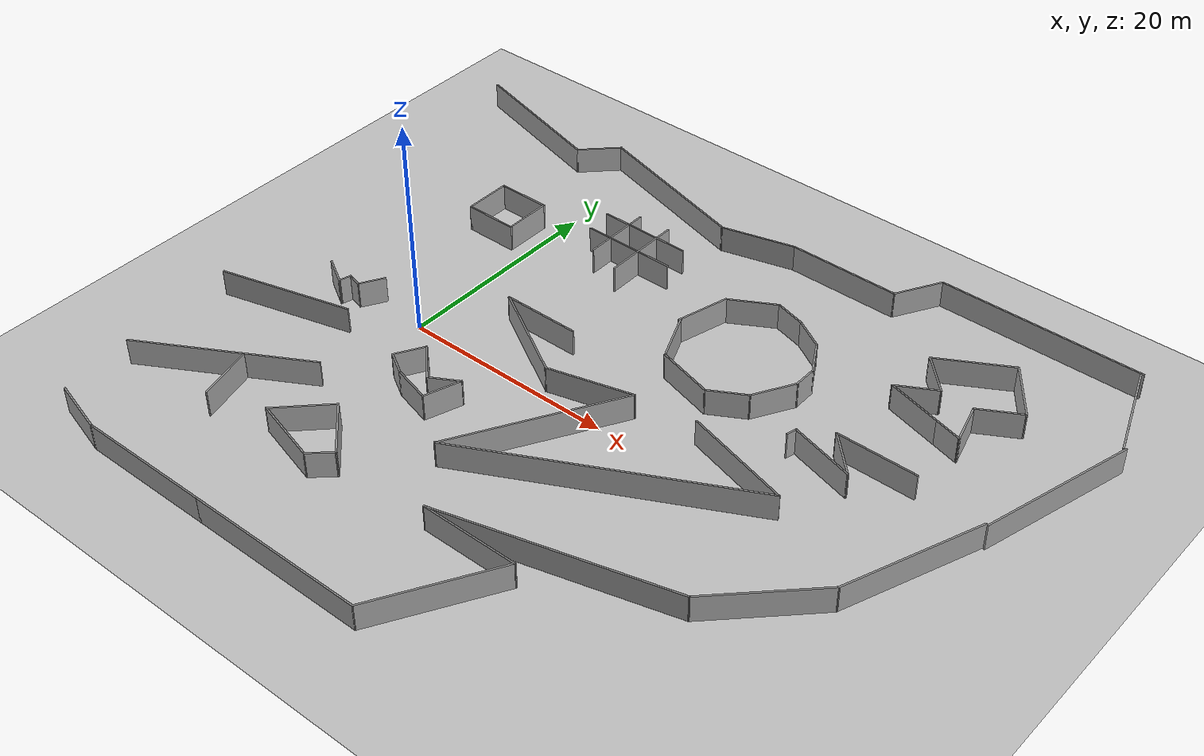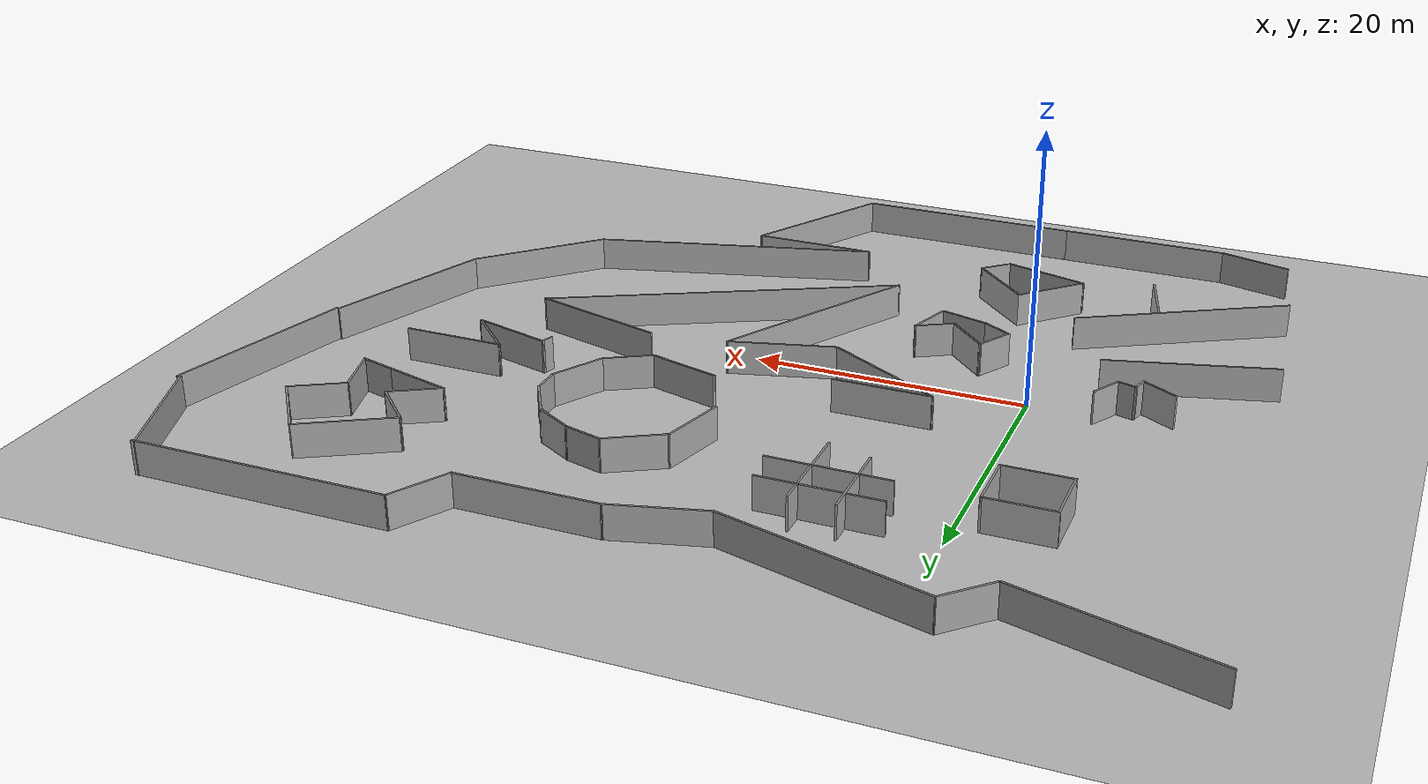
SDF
<sdf version="1.7">
 <world name="default">
  <model name="ground_plane">
   <static>1</static>
   <link name="link">
    <collision name="collision">
     <geometry><plane><normal>0 0 1</normal><size>100 100</size></plane></geometry>
     <surface><friction><ode><mu>100</mu><mu2>50</mu2></ode></friction></surface>
    </collision>
    <visual name="visual">
     <cast_shadows>0</cast_shadows>
     <geometry><plane><normal>0 0 1</normal><size>100 100</size></plane></geometry>
     <material>
      <script><uri>file://media/materials/scripts/gazebo.material</uri><name>Gazebo/Grey</name></script>
     </material>
    </visual>
   </link>
  </model>
  <model name="custommap5">
   <pose>6.86711 -0.856109 0 0 -0 0</pose>
   <link name="Wall_118">
    <collision name="Wall_118_Collision">
     <geometry><box><size>3 0.15 2.5</size></box></geometry>
     <pose>0 0 1.25 0 -0 0</pose>
    </collision>
    <visual name="Wall_118_Visual">
     <pose>0 0 1.25 0 -0 0</pose>
     <geometry><box><size>3 0.15 2.5</size></box></geometry>
     <material>
      <script><uri>file://media/materials/scripts/gazebo.material</uri><name>Gazebo/Grey</name></script>
      <ambient>1 1 1 1</ambient>
     </material>
     <meta><layer>0</layer></meta>
    </visual>
    <pose>1.5599 -4.60224 0 0 -0 -2.61799</pose>
   </link>
   <link name="Wall_119">
    <collision name="Wall_119_Collision">
     <geometry><box><size>4 0.15 2.5</size></box></geometry>
     <pose>0 0 1.25 0 -0 0</pose>
    </collision>
    <visual name="Wall_119_Visual">
     <pose>0 0 1.25 0 -0 0</pose>
     <geometry><box><size>4 0.15 2.5</size></box></geometry>
     <material>
      <script><uri>file://media/materials/scripts/gazebo.material</uri><name>Gazebo/Grey</name></script>
      <ambient>1 1 1 1</ambient>
     </material>
     <meta><layer>0</layer></meta>
    </visual>
    <pose>-1.03537 -3.95356 0 0 -0 2.35619</pose>
   </link>
   <link name="Wall_120">
    <collision name="Wall_120_Collision">
     <geometry><box><size>3 0.15 2.5</size></box></geometry>
     <pose>0 0 1.25 0 -0 0</pose>
    </collision>
    <visual name="Wall_120_Visual">
     <pose>0 0 1.25 0 -0 0</pose>
     <geometry><box><size>3 0.15 2.5</size></box></geometry>
     <material>
      <script><uri>file://media/materials/scripts/gazebo.material</uri><name>Gazebo/Grey</name></script>
      <ambient>1 1 1 1</ambient>
     </material>
     <meta><layer>0</layer></meta>
    </visual>
    <pose>-3.10905 -3.82647 0 0 -0 -2.0944</pose>
   </link>
   <link name="Wall_121">
    <collision name="Wall_121_Collision">
     <geometry><box><size>2.5 0.15 2.5</size></box></geometry>
     <pose>0 0 1.25 0 -0 0</pose>
    </collision>
    <visual name="Wall_121_Visual">
     <pose>0 0 1.25 0 -0 0</pose>
     <geometry><box><size>2.5 0.15 2.5</size></box></geometry>
     <material>
      <script><uri>file://media/materials/scripts/gazebo.material</uri><name>Gazebo/Grey</name></script>
      <ambient>1 1 1 1</ambient>
     </material>
     <meta><layer>0</layer></meta>
    </visual>
    <pose>-2.80397 -5.64805 0 0 -0 -0.523599</pose>
   </link>
   <link name="Wall_122">
    <collision name="Wall_122_Collision">
     <geometry><box><size>3.75 0.15 2.5</size></box></geometry>
     <pose>0 0 1.25 0 -0 0</pose>
    </collision>
    <visual name="Wall_122_Visual">
     <pose>0 0 1.25 0 -0 0</pose>
     <geometry><box><size>3.75 0.15 2.5</size></box></geometry>
     <material>
      <script><uri>file://media/materials/scripts/gazebo.material</uri><name>Gazebo/Grey</name></script>
      <ambient>1 1 1 1</ambient>
     </material>
     <meta><layer>0</layer></meta>
    </visual>
    <pose>-0.047719 -6.70143 0 0 -0 -0.261799</pose>
   </link>
   <link name="Wall_123">
    <collision name="Wall_123_Collision">
     <geometry><box><size>3.60819 0.15 2.5</size></box></geometry>
     <pose>0 0 1.25 0 -0 0</pose>
    </collision>
    <visual name="Wall_123_Visual">
     <pose>0 0 1.25 0 -0 0</pose>
     <geometry><box><size>3.60819 0.15 2.5</size></box></geometry>
     <material>
      <script><uri>file://media/materials/scripts/gazebo.material</uri><name>Gazebo/Grey</name></script>
      <ambient>1 1 1 1</ambient>
     </material>
     <meta><layer>0</layer></meta>
    </visual>
    <pose>2.24247 -5.52852 0 0 -0 1.24616</pose>
   </link>
   <link name="Wall_125">
    <collision name="Wall_125_Collision">
     <geometry><box><size>7.25 0.15 2.5</size></box></geometry>
     <pose>0 0 1.25 0 -0 0</pose>
    </collision>
    <visual name="Wall_125_Visual">
     <pose>0 0 1.25 0 -0 0</pose>
     <geometry><box><size>7.25 0.15 2.5</size></box></geometry>
     <material>
      <script><uri>file://media/materials/scripts/gazebo.material</uri><name>Gazebo/Grey</name></script>
      <ambient>1 1 1 1</ambient>
     </material>
     <meta><layer>0</layer></meta>
    </visual>
    <pose>1.84785 6.60707 0 0 -0 3.14159</pose>
   </link>
   <link name="Wall_126">
    <collision name="Wall_126_Collision">
     <geometry><box><size>10 0.15 2.5</size></box></geometry>
     <pose>0 0 1.25 0 -0 0</pose>
    </collision>
    <visual name="Wall_126_Visual">
     <pose>0 0 1.25 0 -0 0</pose>
     <geometry><box><size>10 0.15 2.5</size></box></geometry>
     <material>
      <script><uri>file://media/materials/scripts/gazebo.material</uri><name>Gazebo/Grey</name></script>
      <ambient>1 1 1 1</ambient>
     </material>
     <meta><layer>0</layer></meta>
    </visual>
    <pose>2.56302 4.14457 0 0 -0 -0.523599</pose>
   </link>
   <link name="Wall_127">
    <collision name="Wall_127_Collision">
     <geometry><box><size>8 0.15 2.5</size></box></geometry>
     <pose>0 0 1.25 0 -0 0</pose>
    </collision>
    <visual name="Wall_127_Visual">
     <pose>0 0 1.25 0 -0 0</pose>
     <geometry><box><size>8 0.15 2.5</size></box></geometry>
     <material>
      <script><uri>file://media/materials/scripts/gazebo.material</uri><name>Gazebo/Grey</name></script>
      <ambient>1 1 1 1</ambient>
     </material>
     <meta><layer>0</layer></meta>
    </visual>
    <pose>10.6195 2.69793 0 0 -0 0.261799</pose>
   </link>
   <link name="Wall_128">
    <collision name="Wall_128_Collision">
     <geometry><box><size>16.5 0.15 2.5</size></box></geometry>
     <pose>0 0 1.25 0 -0 0</pose>
    </collision>
    <visual name="Wall_128_Visual">
     <pose>0 0 1.25 0 -0 0</pose>
     <geometry><box><size>16.5 0.15 2.5</size></box></geometry>
     <material>
      <script><uri>file://media/materials/scripts/gazebo.material</uri><name>Gazebo/Grey</name></script>
      <ambient>1 1 1 1</ambient>
     </material>
     <meta><layer>0</layer></meta>
    </visual>
    <pose>10.3232 -3.36596 0 0 -0 -2.0944</pose>
   </link>
   <link name="Wall_129">
    <collision name="Wall_129_Collision">
     <geometry><box><size>26.8353 0.15 2.5</size></box></geometry>
     <pose>0 0 1.25 0 -0 0</pose>
    </collision>
    <visual name="Wall_129_Visual">
     <pose>0 0 1.25 0 -0 0</pose>
     <geometry><box><size>26.8353 0.15 2.5</size></box></geometry>
     <material>
      <script><uri>file://media/materials/scripts/gazebo.material</uri><name>Gazebo/Grey</name></script>
      <ambient>1 1 1 1</ambient>
     </material>
     <meta><layer>0</layer></meta>
    </visual>
    <pose>18.0786 -4.29987 0 0 -0 0.478691</pose>
   </link>
   <link name="Wall_130">
    <collision name="Wall_130_Collision">
     <geometry><box><size>10.25 0.15 2.5</size></box></geometry>
     <pose>0 0 1.25 0 -0 0</pose>
    </collision>
    <visual name="Wall_130_Visual">
     <pose>0 0 1.25 0 -0 0</pose>
     <geometry><box><size>10.25 0.15 2.5</size></box></geometry>
     <material>
      <script><uri>file://media/materials/scripts/gazebo.material</uri><name>Gazebo/Grey</name></script>
      <ambient>1 1 1 1</ambient>
     </material>
     <meta><layer>0</layer></meta>
    </visual>
    <pose>24.9622 3.15302 0 0 -0 2.87979</pose>
   </link>
   <link name="Wall_132">
    <collision name="Wall_132_Collision">
     <geometry><box><size>16.5 0.15 2.5</size></box></geometry>
     <pose>0 0 1.25 0 -0 0</pose>
    </collision>
    <visual name="Wall_132_Visual">
     <pose>0 0 1.25 0 -0 0</pose>
     <geometry><box><size>16.5 0.15 2.5</size></box></geometry>
     <material>
      <script><uri>file://media/materials/scripts/gazebo.material</uri><name>Gazebo/Grey</name></script>
      <ambient>1 1 1 1</ambient>
     </material>
     <meta><layer>0</layer></meta>
    </visual>
    <pose>-14.7012 -13.6732 0 0 -0 -2.61799</pose>
   </link>
   <link name="Wall_134">
    <collision name="Wall_134_Collision">
     <geometry><box><size>5.25 0.15 2.5</size></box></geometry>
     <pose>0 0 1.25 0 -0 0</pose>
    </collision>
    <visual name="Wall_134_Visual">
     <pose>0 0 1.25 0 -0 0</pose>
     <geometry><box><size>5.25 0.15 2.5</size></box></geometry>
     <material>
      <script><uri>file://media/materials/scripts/gazebo.material</uri><name>Gazebo/Grey</name></script>
      <ambient>1 1 1 1</ambient>
     </material>
     <meta><layer>0</layer></meta>
    </visual>
    <pose>-12.4133 -15.385 0 0 -0 -1.309</pose>
   </link>
   <link name="Wall_136">
    <collision name="Wall_136_Collision">
     <geometry><box><size>5.75 0.15 2.5</size></box></geometry>
     <pose>0 0 1.25 0 -0 0</pose>
    </collision>
    <visual name="Wall_136_Visual">
     <pose>0 0 1.25 0 -0 0</pose>
     <geometry><box><size>5.75 0.15 2.5</size></box></geometry>
     <material>
      <script><uri>file://media/materials/scripts/gazebo.material</uri><name>Gazebo/Grey</name></script>
      <ambient>1 1 1 1</ambient>
     </material>
     <meta><layer>0</layer></meta>
    </visual>
    <pose>-0.731953 -14.1154 0 0 -0 2.35619</pose>
   </link>
   <link name="Wall_137">
    <collision name="Wall_137_Collision">
     <geometry><box><size>5.75 0.15 2.5</size></box></geometry>
     <pose>0 0 1.25 0 -0 0</pose>
    </collision>
    <visual name="Wall_137_Visual">
     <pose>0 0 1.25 0 -0 0</pose>
     <geometry><box><size>5.75 0.15 2.5</size></box></geometry>
     <material>
      <script><uri>file://media/materials/scripts/gazebo.material</uri><name>Gazebo/Grey</name></script>
      <ambient>1 1 1 1</ambient>
     </material>
     <meta><layer>0</layer></meta>
    </visual>
    <pose>-4.69175 -14.1154 0 0 -0 -2.35619</pose>
   </link>
   <link name="Wall_138">
    <collision name="Wall_138_Collision">
     <geometry><box><size>6.5 0.15 2.5</size></box></geometry>
     <pose>0 0 1.25 0 -0 0</pose>
    </collision>
    <visual name="Wall_138_Visual">
     <pose>0 0 1.25 0 -0 0</pose>
     <geometry><box><size>6.5 0.15 2.5</size></box></geometry>
     <material>
      <script><uri>file://media/materials/scripts/gazebo.material</uri><name>Gazebo/Grey</name></script>
      <ambient>1 1 1 1</ambient>
     </material>
     <meta><layer>0</layer></meta>
    </visual>
    <pose>-3.60484 -16.9171 0 0 -0 -0.261799</pose>
   </link>
   <link name="Wall_139">
    <collision name="Wall_139_Collision">
     <geometry><box><size>2.57709 0.15 2.5</size></box></geometry>
     <pose>0 0 1.25 0 -0 0</pose>
    </collision>
    <visual name="Wall_139_Visual">
     <pose>0 0 1.25 0 -0 0</pose>
     <geometry><box><size>2.57709 0.15 2.5</size></box></geometry>
     <material>
      <script><uri>file://media/materials/scripts/gazebo.material</uri><name>Gazebo/Grey</name></script>
      <ambient>1 1 1 1</ambient>
     </material>
     <meta><layer>0</layer></meta>
    </visual>
    <pose>0.354963 -16.9171 0 0 -0 0.74388</pose>
   </link>
   <link name="Wall_146">
    <collision name="Wall_146_Collision">
     <geometry><box><size>6.5 0.15 2.5</size></box></geometry>
     <pose>0 0 1.25 0 -0 0</pose>
    </collision>
    <visual name="Wall_146_Visual">
     <pose>0 0 1.25 0 -0 0</pose>
     <geometry><box><size>6.5 0.15 2.5</size></box></geometry>
     <material>
      <script><uri>file://media/materials/scripts/gazebo.material</uri><name>Gazebo/Grey</name></script>
      <ambient>1 1 1 1</ambient>
     </material>
     <meta><layer>0</layer></meta>
    </visual>
    <pose>-0.631779 19.4863 0 0 -0 -1.5708</pose>
   </link>
   <link name="Wall_148">
    <collision name="Wall_148_Collision">
     <geometry><box><size>7.5 0.15 2.5</size></box></geometry>
     <pose>0 0 1.25 0 -0 0</pose>
    </collision>
    <visual name="Wall_148_Visual">
     <pose>0 0 1.25 0 -0 0</pose>
     <geometry><box><size>7.5 0.15 2.5</size></box></geometry>
     <material>
      <script><uri>file://media/materials/scripts/gazebo.material</uri><name>Gazebo/Grey</name></script>
      <ambient>1 1 1 1</ambient>
     </material>
     <meta><layer>0</layer></meta>
    </visual>
    <pose>2.48899 19.0939 0 0 -0 -1.5708</pose>
   </link>
   <link name="Wall_15">
    <collision name="Wall_15_Collision">
     <geometry><box><size>5.5 0.15 2.5</size></box></geometry>
     <pose>0 0 1.25 0 -0 0</pose>
    </collision>
    <visual name="Wall_15_Visual">
     <pose>0 0 1.25 0 -0 0</pose>
     <geometry><box><size>5.5 0.15 2.5</size></box></geometry>
     <material>
      <script><uri>file://media/materials/scripts/gazebo.material</uri><name>Gazebo/Grey</name></script>
      <ambient>1 1 1 1</ambient>
     </material>
     <meta><layer>0</layer></meta>
    </visual>
    <pose>-18.1258 -25.4979 0 0 -0 -0.261799</pose>
   </link>
   <link name="Wall_150">
    <collision name="Wall_150_Collision">
     <geometry><box><size>8.75 0.15 2.5</size></box></geometry>
     <pose>0 0 1.25 0 -0 0</pose>
    </collision>
    <visual name="Wall_150_Visual">
     <pose>0 0 1.25 0 -0 0</pose>
     <geometry><box><size>8.75 0.15 2.5</size></box></geometry>
     <material>
      <script><uri>file://media/materials/scripts/gazebo.material</uri><name>Gazebo/Grey</name></script>
      <ambient>1 1 1 1</ambient>
     </material>
     <meta><layer>0</layer></meta>
    </visual>
    <pose>1.08552 21.1547 0 0 -0 0</pose>
   </link>
   <link name="Wall_152">
    <collision name="Wall_152_Collision">
     <geometry><box><size>8.75 0.15 2.5</size></box></geometry>
     <pose>0 0 1.25 0 -0 0</pose>
    </collision>
    <visual name="Wall_152_Visual">
     <pose>0 0 1.25 0 -0 0</pose>
     <geometry><box><size>8.75 0.15 2.5</size></box></geometry>
     <material>
      <script><uri>file://media/materials/scripts/gazebo.material</uri><name>Gazebo/Grey</name></script>
      <ambient>1 1 1 1</ambient>
     </material>
     <meta><layer>0</layer></meta>
    </visual>
    <pose>1.40836 18.572 0 0 -0 0</pose>
   </link>
   <link name="Wall_154">
    <collision name="Wall_154_Collision">
     <geometry><box><size>7.25 0.15 2.5</size></box></geometry>
     <pose>0 0 1.25 0 -0 0</pose>
    </collision>
    <visual name="Wall_154_Visual">
     <pose>0 0 1.25 0 -0 0</pose>
     <geometry><box><size>7.25 0.15 2.5</size></box></geometry>
     <material>
      <script><uri>file://media/materials/scripts/gazebo.material</uri><name>Gazebo/Grey</name></script>
      <ambient>1 1 1 1</ambient>
     </material>
     <meta><layer>0</layer></meta>
    </visual>
    <pose>32.8624 24.4607 0 0 -0 -2.61799</pose>
   </link>
   <link name="Wall_155">
    <collision name="Wall_155_Collision">
     <geometry><box><size>4.25 0.15 2.5</size></box></geometry>
     <pose>0 0 1.25 0 -0 0</pose>
    </collision>
    <visual name="Wall_155_Visual">
     <pose>0 0 1.25 0 -0 0</pose>
     <geometry><box><size>4.25 0.15 2.5</size></box></geometry>
     <material>
      <script><uri>file://media/materials/scripts/gazebo.material</uri><name>Gazebo/Grey</name></script>
      <ambient>1 1 1 1</ambient>
     </material>
     <meta><layer>0</layer></meta>
    </visual>
    <pose>31.2375 21.2362 0 0 -0 -0.785398</pose>
   </link>
   <link name="Wall_156">
    <collision name="Wall_156_Collision">
     <geometry><box><size>4 0.15 2.5</size></box></geometry>
     <pose>0 0 1.25 0 -0 0</pose>
    </collision>
    <visual name="Wall_156_Visual">
     <pose>0 0 1.25 0 -0 0</pose>
     <geometry><box><size>4 0.15 2.5</size></box></geometry>
     <material>
      <script><uri>file://media/materials/scripts/gazebo.material</uri><name>Gazebo/Grey</name></script>
      <ambient>1 1 1 1</ambient>
     </material>
     <meta><layer>0</layer></meta>
    </visual>
    <pose>31.02 18.8241 0 0 -0 -2.61799</pose>
   </link>
   <link name="Wall_157">
    <collision name="Wall_157_Collision">
     <geometry><box><size>5.25 0.15 2.5</size></box></geometry>
     <pose>0 0 1.25 0 -0 0</pose>
    </collision>
    <visual name="Wall_157_Visual">
     <pose>0 0 1.25 0 -0 0</pose>
     <geometry><box><size>5.25 0.15 2.5</size></box></geometry>
     <material>
      <script><uri>file://media/materials/scripts/gazebo.material</uri><name>Gazebo/Grey</name></script>
      <ambient>1 1 1 1</ambient>
     </material>
     <meta><layer>0</layer></meta>
    </visual>
    <pose>31.816 17.2016 0 0 -0 -0.261799</pose>
   </link>
   <link name="Wall_158">
    <collision name="Wall_158_Collision">
     <geometry><box><size>2.75 0.15 2.5</size></box></geometry>
     <pose>0 0 1.25 0 -0 0</pose>
    </collision>
    <visual name="Wall_158_Visual">
     <pose>0 0 1.25 0 -0 0</pose>
     <geometry><box><size>2.75 0.15 2.5</size></box></geometry>
     <material>
      <script><uri>file://media/materials/scripts/gazebo.material</uri><name>Gazebo/Grey</name></script>
      <ambient>1 1 1 1</ambient>
     </material>
     <meta><layer>0</layer></meta>
    </visual>
    <pose>35.5348 16.2052 0 0 -0 -0.261799</pose>
   </link>
   <link name="Wall_159">
    <collision name="Wall_159_Collision">
     <geometry><box><size>4 0.15 2.5</size></box></geometry>
     <pose>0 0 1.25 0 -0 0</pose>
    </collision>
    <visual name="Wall_159_Visual">
     <pose>0 0 1.25 0 -0 0</pose>
     <geometry><box><size>4 0.15 2.5</size></box></geometry>
     <material>
      <script><uri>file://media/materials/scripts/gazebo.material</uri><name>Gazebo/Grey</name></script>
      <ambient>1 1 1 1</ambient>
     </material>
     <meta><layer>0</layer></meta>
    </visual>
    <pose>36.2923 17.7281 0 0 -0 1.8326</pose>
   </link>
   <link name="Wall_16">
    <collision name="Wall_16_Collision">
     <geometry><box><size>12.75 0.15 2.5</size></box></geometry>
     <pose>0 0 1.25 0 -0 0</pose>
    </collision>
    <visual name="Wall_16_Visual">
     <pose>0 0 1.25 0 -0 0</pose>
     <geometry><box><size>12.75 0.15 2.5</size></box></geometry>
     <material>
      <script><uri>file://media/materials/scripts/gazebo.material</uri><name>Gazebo/Grey</name></script>
      <ambient>1 1 1 1</ambient>
     </material>
     <meta><layer>0</layer></meta>
    </visual>
    <pose>-9.24199 -26.1903 0 0 -0 0</pose>
   </link>
   <link name="Wall_160">
    <collision name="Wall_160_Collision">
     <geometry><box><size>4.25 0.15 2.5</size></box></geometry>
     <pose>0 0 1.25 0 -0 0</pose>
    </collision>
    <visual name="Wall_160_Visual">
     <pose>0 0 1.25 0 -0 0</pose>
     <geometry><box><size>4.25 0.15 2.5</size></box></geometry>
     <material>
      <script><uri>file://media/materials/scripts/gazebo.material</uri><name>Gazebo/Grey</name></script>
      <ambient>1 1 1 1</ambient>
     </material>
     <meta><layer>0</layer></meta>
    </visual>
    <pose>37.5694 20.6125 0 0 -0 0.523599</pose>
   </link>
   <link name="Wall_161">
    <collision name="Wall_161_Collision">
     <geometry><box><size>5.8735 0.15 2.5</size></box></geometry>
     <pose>0 0 1.25 0 -0 0</pose>
    </collision>
    <visual name="Wall_161_Visual">
     <pose>0 0 1.25 0 -0 0</pose>
     <geometry><box><size>5.8735 0.15 2.5</size></box></geometry>
     <material>
      <script><uri>file://media/materials/scripts/gazebo.material</uri><name>Gazebo/Grey</name></script>
      <ambient>1 1 1 1</ambient>
     </material>
     <meta><layer>0</layer></meta>
    </visual>
    <pose>37.6408 23.9366 0 0 -0 2.20862</pose>
   </link>
   <link name="Wall_163">
    <collision name="Wall_163_Collision">
     <geometry><box><size>7.5 0.15 2.5</size></box></geometry>
     <pose>0 0 1.25 0 -0 0</pose>
    </collision>
    <visual name="Wall_163_Visual">
     <pose>0 0 1.25 0 -0 0</pose>
     <geometry><box><size>7.5 0.15 2.5</size></box></geometry>
     <material>
      <script><uri>file://media/materials/scripts/gazebo.material</uri><name>Gazebo/Grey</name></script>
      <ambient>1 1 1 1</ambient>
     </material>
     <meta><layer>0</layer></meta>
    </visual>
    <pose>32.9074 10.3091 0 0 -0 3.14159</pose>
   </link>
   <link name="Wall_164">
    <collision name="Wall_164_Collision">
     <geometry><box><size>4.75 0.15 2.5</size></box></geometry>
     <pose>0 0 1.25 0 -0 0</pose>
    </collision>
    <visual name="Wall_164_Visual">
     <pose>0 0 1.25 0 -0 0</pose>
     <geometry><box><size>4.75 0.15 2.5</size></box></geometry>
     <material>
      <script><uri>file://media/materials/scripts/gazebo.material</uri><name>Gazebo/Grey</name></script>
      <ambient>1 1 1 1</ambient>
     </material>
     <meta><layer>0</layer></meta>
    </visual>
    <pose>30.8588 8.68272 0 0 -0 -0.785398</pose>
   </link>
   <link name="Wall_165">
    <collision name="Wall_165_Collision">
     <geometry><box><size>6.25 0.15 2.5</size></box></geometry>
     <pose>0 0 1.25 0 -0 0</pose>
    </collision>
    <visual name="Wall_165_Visual">
     <pose>0 0 1.25 0 -0 0</pose>
     <geometry><box><size>6.25 0.15 2.5</size></box></geometry>
     <material>
      <script><uri>file://media/materials/scripts/gazebo.material</uri><name>Gazebo/Grey</name></script>
      <ambient>1 1 1 1</ambient>
     </material>
     <meta><layer>0</layer></meta>
    </visual>
    <pose>29.539 7.84577 0 0 -0 2.87979</pose>
   </link>
   <link name="Wall_166">
    <collision name="Wall_166_Collision">
     <geometry><box><size>1 0.15 2.5</size></box></geometry>
     <pose>0 0 1.25 0 -0 0</pose>
    </collision>
    <visual name="Wall_166_Visual">
     <pose>0 0 1.25 0 -0 0</pose>
     <geometry><box><size>1 0.15 2.5</size></box></geometry>
     <material>
      <script><uri>file://media/materials/scripts/gazebo.material</uri><name>Gazebo/Grey</name></script>
      <ambient>1 1 1 1</ambient>
     </material>
     <meta><layer>0</layer></meta>
    </visual>
    <pose>26.483 8.22465 0 0 -0 -1.8326</pose>
   </link>
   <link name="Wall_17">
    <collision name="Wall_17_Collision">
     <geometry><box><size>16.75 0.15 2.5</size></box></geometry>
     <pose>0 0 1.25 0 -0 0</pose>
    </collision>
    <visual name="Wall_17_Visual">
     <pose>0 0 1.25 0 -0 0</pose>
     <geometry><box><size>16.75 0.15 2.5</size></box></geometry>
     <material>
      <script><uri>file://media/materials/scripts/gazebo.material</uri><name>Gazebo/Grey</name></script>
      <ambient>1 1 1 1</ambient>
     </material>
     <meta><layer>0</layer></meta>
    </visual>
    <pose>5.35801 -26.1903 0 0 -0 0</pose>
   </link>
   <link name="Wall_18">
    <collision name="Wall_18_Collision">
     <geometry><box><size>12 0.15 2.5</size></box></geometry>
     <pose>0 0 1.25 0 -0 0</pose>
    </collision>
    <visual name="Wall_18_Visual">
     <pose>0 0 1.25 0 -0 0</pose>
     <geometry><box><size>12 0.15 2.5</size></box></geometry>
     <material>
      <script><uri>file://media/materials/scripts/gazebo.material</uri><name>Gazebo/Grey</name></script>
      <ambient>1 1 1 1</ambient>
     </material>
     <meta><layer>0</layer></meta>
    </visual>
    <pose>16.6205 -21.0591 0 0 -0 1.0472</pose>
   </link>
   <link name="Wall_19">
    <collision name="Wall_19_Collision">
     <geometry><box><size>9.25 0.15 2.5</size></box></geometry>
     <pose>0 0 1.25 0 -0 0</pose>
    </collision>
    <visual name="Wall_19_Visual">
     <pose>0 0 1.25 0 -0 0</pose>
     <geometry><box><size>9.25 0.15 2.5</size></box></geometry>
     <material>
      <script><uri>file://media/materials/scripts/gazebo.material</uri><name>Gazebo/Grey</name></script>
      <ambient>1 1 1 1</ambient>
     </material>
     <meta><layer>0</layer></meta>
    </visual>
    <pose>15.033 -15.9279 0 0 -0 3.14159</pose>
   </link>
   <link name="Wall_20">
    <collision name="Wall_20_Collision">
     <geometry><box><size>21.5 0.15 2.5</size></box></geometry>
     <pose>0 0 1.25 0 -0 0</pose>
    </collision>
    <visual name="Wall_20_Visual">
     <pose>0 0 1.25 0 -0 0</pose>
     <geometry><box><size>21.5 0.15 2.5</size></box></geometry>
     <material>
      <script><uri>file://media/materials/scripts/gazebo.material</uri><name>Gazebo/Grey</name></script>
      <ambient>1 1 1 1</ambient>
     </material>
     <meta><layer>0</layer></meta>
    </visual>
    <pose>20.7943 -13.165 0 0 -0 0.261799</pose>
   </link>
   <link name="Wall_21">
    <collision name="Wall_21_Collision">
     <geometry><box><size>10.75 0.15 2.5</size></box></geometry>
     <pose>0 0 1.25 0 -0 0</pose>
    </collision>
    <visual name="Wall_21_Visual">
     <pose>0 0 1.25 0 -0 0</pose>
     <geometry><box><size>10.75 0.15 2.5</size></box></geometry>
     <material>
      <script><uri>file://media/materials/scripts/gazebo.material</uri><name>Gazebo/Grey</name></script>
      <ambient>1 1 1 1</ambient>
     </material>
     <meta><layer>0</layer></meta>
    </visual>
    <pose>34.8532 -6.65441 0 0 -0 0.785398</pose>
   </link>
   <link name="Wall_22">
    <collision name="Wall_22_Collision">
     <geometry><box><size>13.1134 0.15 2.5</size></box></geometry>
     <pose>0 0 1.25 0 -0 0</pose>
    </collision>
    <visual name="Wall_22_Visual">
     <pose>0 0 1.25 0 -0 0</pose>
     <geometry><box><size>13.1134 0.15 2.5</size></box></geometry>
     <material>
      <script><uri>file://media/materials/scripts/gazebo.material</uri><name>Gazebo/Grey</name></script>
      <ambient>1 1 1 1</ambient>
     </material>
     <meta><layer>0</layer></meta>
    </visual>
    <pose>40.9098 3.14975 0 0 -0 1.20657</pose>
   </link>
   <link name="Wall_23">
    <collision name="Wall_23_Collision">
     <geometry><box><size>14.503 0.15 2.5</size></box></geometry>
     <pose>0 0 1.25 0 -0 0</pose>
    </collision>
    <visual name="Wall_23_Visual">
     <pose>0 0 1.25 0 -0 0</pose>
     <geometry><box><size>14.503 0.15 2.5</size></box></geometry>
     <material>
      <script><uri>file://media/materials/scripts/gazebo.material</uri><name>Gazebo/Grey</name></script>
      <ambient>1 1 1 1</ambient>
     </material>
     <meta><layer>0</layer></meta>
    </visual>
    <pose>45.3172 16.1312 0 0 -0 1.30527</pose>
   </link>
   <link name="Wall_24">
    <collision name="Wall_24_Collision">
     <geometry><box><size>9.54189 0.15 2.5</size></box></geometry>
     <pose>0 0 1.25 0 -0 0</pose>
    </collision>
    <visual name="Wall_24_Visual">
     <pose>0 0 1.25 0 -0 0</pose>
     <geometry><box><size>9.54189 0.15 2.5</size></box></geometry>
     <material>
      <script><uri>file://media/materials/scripts/gazebo.material</uri><name>Gazebo/Grey</name></script>
      <ambient>1 1 1 1</ambient>
     </material>
     <meta><layer>0</layer></meta>
    </visual>
    <pose>45.4098 27.48 0 0 -0 1.91291</pose>
   </link>
   <link name="Wall_25">
    <collision name="Wall_25_Collision">
     <geometry><box><size>19.0164 0.15 2.5</size></box></geometry>
     <pose>0 0 1.25 0 -0 0</pose>
    </collision>
    <visual name="Wall_25_Visual">
     <pose>0 0 1.25 0 -0 0</pose>
     <geometry><box><size>19.0164 0.15 2.5</size></box></geometry>
     <material>
      <script><uri>file://media/materials/scripts/gazebo.material</uri><name>Gazebo/Grey</name></script>
      <ambient>1 1 1 1</ambient>
     </material>
     <meta><layer>0</layer></meta>
    </visual>
    <pose>34.6164 31.9038 0 0 -0 3.14159</pose>
   </link>
   <link name="Wall_26">
    <collision name="Wall_26_Collision">
     <geometry><box><size>4.75 0.15 2.5</size></box></geometry>
     <pose>0 0 1.25 0 -0 0</pose>
    </collision>
    <visual name="Wall_26_Visual">
     <pose>0 0 1.25 0 -0 0</pose>
     <geometry><box><size>4.75 0.15 2.5</size></box></geometry>
     <material>
      <script><uri>file://media/materials/scripts/gazebo.material</uri><name>Gazebo/Grey</name></script>
      <ambient>1 1 1 1</ambient>
     </material>
     <meta><layer>0</layer></meta>
    </visual>
    <pose>24.0332 29.912 0 0 -0 -2.0944</pose>
   </link>
   <link name="Wall_27">
    <collision name="Wall_27_Collision">
     <geometry><box><size>10.5 0.15 2.5</size></box></geometry>
     <pose>0 0 1.25 0 -0 0</pose>
    </collision>
    <visual name="Wall_27_Visual">
     <pose>0 0 1.25 0 -0 0</pose>
     <geometry><box><size>10.5 0.15 2.5</size></box></geometry>
     <material>
      <script><uri>file://media/materials/scripts/gazebo.material</uri><name>Gazebo/Grey</name></script>
      <ambient>1 1 1 1</ambient>
     </material>
     <meta><layer>0</layer></meta>
    </visual>
    <pose>17.7082 27.9201 0 0 -0 3.14159</pose>
   </link>
   <link name="Wall_28">
    <collision name="Wall_28_Collision">
     <geometry><box><size>7 0.15 2.5</size></box></geometry>
     <pose>0 0 1.25 0 -0 0</pose>
    </collision>
    <visual name="Wall_28_Visual">
     <pose>0 0 1.25 0 -0 0</pose>
     <geometry><box><size>7 0.15 2.5</size></box></geometry>
     <material>
      <script><uri>file://media/materials/scripts/gazebo.material</uri><name>Gazebo/Grey</name></script>
      <ambient>1 1 1 1</ambient>
     </material>
     <meta><layer>0</layer></meta>
    </visual>
    <pose>9.22489 27.0337 0 0 -0 -2.87979</pose>
   </link>
   <link name="Wall_29">
    <collision name="Wall_29_Collision">
     <geometry><box><size>15.75 0.15 2.5</size></box></geometry>
     <pose>0 0 1.25 0 -0 0</pose>
    </collision>
    <visual name="Wall_29_Visual">
     <pose>0 0 1.25 0 -0 0</pose>
     <geometry><box><size>15.75 0.15 2.5</size></box></geometry>
     <material>
      <script><uri>file://media/materials/scripts/gazebo.material</uri><name>Gazebo/Grey</name></script>
      <ambient>1 1 1 1</ambient>
     </material>
     <meta><layer>0</layer></meta>
    </visual>
    <pose>-1.61763 28.166 0 0 -0 2.87979</pose>
   </link>
   <link name="Wall_30">
    <collision name="Wall_30_Collision">
     <geometry><box><size>4.25 0.15 2.5</size></box></geometry>
     <pose>0 0 1.25 0 -0 0</pose>
    </collision>
    <visual name="Wall_30_Visual">
     <pose>0 0 1.25 0 -0 0</pose>
     <geometry><box><size>4.25 0.15 2.5</size></box></geometry>
     <material>
      <script><uri>file://media/materials/scripts/gazebo.material</uri><name>Gazebo/Grey</name></script>
      <ambient>1 1 1 1</ambient>
     </material>
     <meta><layer>0</layer></meta>
    </visual>
    <pose>-10.6014 28.7352 0 0 -0 -2.35619</pose>
   </link>
   <link name="Wall_31">
    <collision name="Wall_31_Collision">
     <geometry><box><size>14.25 0.15 2.5</size></box></geometry>
     <pose>0 0 1.25 0 -0 0</pose>
    </collision>
    <visual name="Wall_31_Visual">
     <pose>0 0 1.25 0 -0 0</pose>
     <geometry><box><size>14.25 0.15 2.5</size></box></geometry>
     <material>
      <script><uri>file://media/materials/scripts/gazebo.material</uri><name>Gazebo/Grey</name></script>
      <ambient>1 1 1 1</ambient>
     </material>
     <meta><layer>0</layer></meta>
    </visual>
    <pose>-18.8608 29.1103 0 0 -0 2.87979</pose>
   </link>
   <link name="Wall_38">
    <collision name="Wall_38_Collision">
     <geometry><box><size>4.5 0.15 2.5</size></box></geometry>
     <pose>0 0 1.25 0 -0 0</pose>
    </collision>
    <visual name="Wall_38_Visual">
     <pose>0 0 1.25 0 -0 0</pose>
     <geometry><box><size>4.5 0.15 2.5</size></box></geometry>
     <material>
      <script><uri>file://media/materials/scripts/gazebo.material</uri><name>Gazebo/Grey</name></script>
      <ambient>1 1 1 1</ambient>
     </material>
     <meta><layer>0</layer></meta>
    </visual>
    <pose>-13.292 16.2994 0 0 -0 -1.5708</pose>
   </link>
   <link name="Wall_39">
    <collision name="Wall_39_Collision">
     <geometry><box><size>5 0.15 2.5</size></box></geometry>
     <pose>0 0 1.25 0 -0 0</pose>
    </collision>
    <visual name="Wall_39_Visual">
     <pose>0 0 1.25 0 -0 0</pose>
     <geometry><box><size>5 0.15 2.5</size></box></geometry>
     <material>
      <script><uri>file://media/materials/scripts/gazebo.material</uri><name>Gazebo/Grey</name></script>
      <ambient>1 1 1 1</ambient>
     </material>
     <meta><layer>0</layer></meta>
    </visual>
    <pose>-10.867 14.1244 0 0 -0 0</pose>
   </link>
   <link name="Wall_40">
    <collision name="Wall_40_Collision">
     <geometry><box><size>4.5 0.15 2.5</size></box></geometry>
     <pose>0 0 1.25 0 -0 0</pose>
    </collision>
    <visual name="Wall_40_Visual">
     <pose>0 0 1.25 0 -0 0</pose>
     <geometry><box><size>4.5 0.15 2.5</size></box></geometry>
     <material>
      <script><uri>file://media/materials/scripts/gazebo.material</uri><name>Gazebo/Grey</name></script>
      <ambient>1 1 1 1</ambient>
     </material>
     <meta><layer>0</layer></meta>
    </visual>
    <pose>-8.44201 16.2994 0 0 -0 1.5708</pose>
   </link>
   <link name="Wall_41">
    <collision name="Wall_41_Collision">
     <geometry><box><size>5 0.15 2.5</size></box></geometry>
     <pose>0 0 1.25 0 -0 0</pose>
    </collision>
    <visual name="Wall_41_Visual">
     <pose>0 0 1.25 0 -0 0</pose>
     <geometry><box><size>5 0.15 2.5</size></box></geometry>
     <material>
      <script><uri>file://media/materials/scripts/gazebo.material</uri><name>Gazebo/Grey</name></script>
      <ambient>1 1 1 1</ambient>
     </material>
     <meta><layer>0</layer></meta>
    </visual>
    <pose>-10.867 18.4744 0 0 -0 3.14159</pose>
   </link>
   <link name="Wall_43">
    <collision name="Wall_43_Collision">
     <geometry><box><size>5 0.15 2.5</size></box></geometry>
     <pose>0 0 1.25 0 -0 0</pose>
    </collision>
    <visual name="Wall_43_Visual">
     <pose>0 0 1.25 0 -0 0</pose>
     <geometry><box><size>5 0.15 2.5</size></box></geometry>
     <material>
      <script><uri>file://media/materials/scripts/gazebo.material</uri><name>Gazebo/Grey</name></script>
      <ambient>1 1 1 1</ambient>
     </material>
     <meta><layer>0</layer></meta>
    </visual>
    <pose>11.7998 15.8091 0 0 -0 -1.8326</pose>
   </link>
   <link name="Wall_44">
    <collision name="Wall_44_Collision">
     <geometry><box><size>4.83678 0.15 2.5</size></box></geometry>
     <pose>0 0 1.25 0 -0 0</pose>
    </collision>
    <visual name="Wall_44_Visual">
     <pose>0 0 1.25 0 -0 0</pose>
     <geometry><box><size>4.83678 0.15 2.5</size></box></geometry>
     <material>
      <script><uri>file://media/materials/scripts/gazebo.material</uri><name>Gazebo/Grey</name></script>
      <ambient>1 1 1 1</ambient>
     </material>
     <meta><layer>0</layer></meta>
    </visual>
    <pose>12.2058 11.3141 0 0 -0 -1.16452</pose>
   </link>
   <link name="Wall_45">
    <collision name="Wall_45_Collision">
     <geometry><box><size>5.5 0.15 2.5</size></box></geometry>
     <pose>0 0 1.25 0 -0 0</pose>
    </collision>
    <visual name="Wall_45_Visual">
     <pose>0 0 1.25 0 -0 0</pose>
     <geometry><box><size>5.5 0.15 2.5</size></box></geometry>
     <material>
      <script><uri>file://media/materials/scripts/gazebo.material</uri><name>Gazebo/Grey</name></script>
      <ambient>1 1 1 1</ambient>
     </material>
     <meta><layer>0</layer></meta>
    </visual>
    <pose>15.7158 8.46916 0 0 -0 -0.261799</pose>
   </link>
   <link name="Wall_46">
    <collision name="Wall_46_Collision">
     <geometry><box><size>3.75 0.15 2.5</size></box></geometry>
     <pose>0 0 1.25 0 -0 0</pose>
    </collision>
    <visual name="Wall_46_Visual">
     <pose>0 0 1.25 0 -0 0</pose>
     <geometry><box><size>3.75 0.15 2.5</size></box></geometry>
     <material>
      <script><uri>file://media/materials/scripts/gazebo.material</uri><name>Gazebo/Grey</name></script>
      <ambient>1 1 1 1</ambient>
     </material>
     <meta><layer>0</layer></meta>
    </visual>
    <pose>19.8585 8.67682 0 0 -0 0.523599</pose>
   </link>
   <link name="Wall_47">
    <collision name="Wall_47_Collision">
     <geometry><box><size>4.25 0.15 2.5</size></box></geometry>
     <pose>0 0 1.25 0 -0 0</pose>
    </collision>
    <visual name="Wall_47_Visual">
     <pose>0 0 1.25 0 -0 0</pose>
     <geometry><box><size>4.25 0.15 2.5</size></box></geometry>
     <material>
      <script><uri>file://media/materials/scripts/gazebo.material</uri><name>Gazebo/Grey</name></script>
      <ambient>1 1 1 1</ambient>
     </material>
     <meta><layer>0</layer></meta>
    </visual>
    <pose>22.4423 11.3522 0 0 -0 1.0472</pose>
   </link>
   <link name="Wall_48">
    <collision name="Wall_48_Collision">
     <geometry><box><size>2.25 0.15 2.5</size></box></geometry>
     <pose>0 0 1.25 0 -0 0</pose>
    </collision>
    <visual name="Wall_48_Visual">
     <pose>0 0 1.25 0 -0 0</pose>
     <geometry><box><size>2.25 0.15 2.5</size></box></geometry>
     <material>
      <script><uri>file://media/materials/scripts/gazebo.material</uri><name>Gazebo/Grey</name></script>
      <ambient>1 1 1 1</ambient>
     </material>
     <meta><layer>0</layer></meta>
    </visual>
    <pose>23.4673 14.1775 0 0 -0 1.5708</pose>
   </link>
   <link name="Wall_49">
    <collision name="Wall_49_Collision">
     <geometry><box><size>3.5 0.15 2.5</size></box></geometry>
     <pose>0 0 1.25 0 -0 0</pose>
    </collision>
    <visual name="Wall_49_Visual">
     <pose>0 0 1.25 0 -0 0</pose>
     <geometry><box><size>3.5 0.15 2.5</size></box></geometry>
     <material>
      <script><uri>file://media/materials/scripts/gazebo.material</uri><name>Gazebo/Grey</name></script>
      <ambient>1 1 1 1</ambient>
     </material>
     <meta><layer>0</layer></meta>
    </visual>
    <pose>22.6298 16.6781 0 0 -0 2.0944</pose>
   </link>
   <link name="Wall_50">
    <collision name="Wall_50_Collision">
     <geometry><box><size>3.25 0.15 2.5</size></box></geometry>
     <pose>0 0 1.25 0 -0 0</pose>
    </collision>
    <visual name="Wall_50_Visual">
     <pose>0 0 1.25 0 -0 0</pose>
     <geometry><box><size>3.25 0.15 2.5</size></box></geometry>
     <material>
      <script><uri>file://media/materials/scripts/gazebo.material</uri><name>Gazebo/Grey</name></script>
      <ambient>1 1 1 1</ambient>
     </material>
     <meta><layer>0</layer></meta>
    </visual>
    <pose>20.45 18.9037 0 0 -0 2.61799</pose>
   </link>
   <link name="Wall_51">
    <collision name="Wall_51_Collision">
     <geometry><box><size>3 0.15 2.5</size></box></geometry>
     <pose>0 0 1.25 0 -0 0</pose>
    </collision>
    <visual name="Wall_51_Visual">
     <pose>0 0 1.25 0 -0 0</pose>
     <geometry><box><size>3 0.15 2.5</size></box></geometry>
     <material>
      <script><uri>file://media/materials/scripts/gazebo.material</uri><name>Gazebo/Grey</name></script>
      <ambient>1 1 1 1</ambient>
     </material>
     <meta><layer>0</layer></meta>
    </visual>
    <pose>17.7312 20.0475 0 0 -0 2.87979</pose>
   </link>
   <link name="Wall_52">
    <collision name="Wall_52_Collision">
     <geometry><box><size>4.5 0.15 2.5</size></box></geometry>
     <pose>0 0 1.25 0 -0 0</pose>
    </collision>
    <visual name="Wall_52_Visual">
     <pose>0 0 1.25 0 -0 0</pose>
     <geometry><box><size>4.5 0.15 2.5</size></box></geometry>
     <material>
      <script><uri>file://media/materials/scripts/gazebo.material</uri><name>Gazebo/Grey</name></script>
      <ambient>1 1 1 1</ambient>
     </material>
     <meta><layer>0</layer></meta>
    </visual>
    <pose>14.4711 19.3288 0 0 -0 -2.61799</pose>
   </link>
   <link name="Wall_61">
    <collision name="Wall_61_Collision">
     <geometry><box><size>12.5 0.15 2.5</size></box></geometry>
     <pose>0 0 1.25 0 -0 0</pose>
    </collision>
    <visual name="Wall_61_Visual">
     <pose>0 0 1.25 0 -0 0</pose>
     <geometry><box><size>12.5 0.15 2.5</size></box></geometry>
     <material>
      <script><uri>file://media/materials/scripts/gazebo.material</uri><name>Gazebo/Grey</name></script>
      <ambient>1 1 1 1</ambient>
     </material>
     <meta><layer>0</layer></meta>
    </visual>
    <pose>-16.939 -4.91436 0 0 -0 0.261799</pose>
   </link>
   <link name="Wall_63">
    <collision name="Wall_63_Collision">
     <geometry><box><size>3 0.15 2.5</size></box></geometry>
     <pose>0 0 1.25 0 -0 0</pose>
    </collision>
    <visual name="Wall_63_Visual">
     <pose>0 0 1.25 0 -0 0</pose>
     <geometry><box><size>3 0.15 2.5</size></box></geometry>
     <material>
      <script><uri>file://media/materials/scripts/gazebo.material</uri><name>Gazebo/Grey</name></script>
      <ambient>1 1 1 1</ambient>
     </material>
     <meta><layer>0</layer></meta>
    </visual>
    <pose>-15.6091 -0.317073 0 0 -0 -0.523599</pose>
   </link>
   <link name="Wall_64">
    <collision name="Wall_64_Collision">
     <geometry><box><size>1.25 0.15 2.5</size></box></geometry>
     <pose>0 0 1.25 0 -0 0</pose>
    </collision>
    <visual name="Wall_64_Visual">
     <pose>0 0 1.25 0 -0 0</pose>
     <geometry><box><size>1.25 0.15 2.5</size></box></geometry>
     <material>
      <script><uri>file://media/materials/scripts/gazebo.material</uri><name>Gazebo/Grey</name></script>
      <ambient>1 1 1 1</ambient>
     </material>
     <meta><layer>0</layer></meta>
    </visual>
    <pose>-14.2327 -0.498314 0 0 -0 1.309</pose>
   </link>
   <link name="Wall_65">
    <collision name="Wall_65_Collision">
     <geometry><box><size>1.5 0.15 2.5</size></box></geometry>
     <pose>0 0 1.25 0 -0 0</pose>
    </collision>
    <visual name="Wall_65_Visual">
     <pose>0 0 1.25 0 -0 0</pose>
     <geometry><box><size>1.5 0.15 2.5</size></box></geometry>
     <material>
      <script><uri>file://media/materials/scripts/gazebo.material</uri><name>Gazebo/Grey</name></script>
      <ambient>1 1 1 1</ambient>
     </material>
     <meta><layer>0</layer></meta>
    </visual>
    <pose>-13.4384 -0.141758 0 0 -0 -0.261799</pose>
   </link>
   <link name="Wall_66">
    <collision name="Wall_66_Collision">
     <geometry><box><size>2.5 0.15 2.5</size></box></geometry>
     <pose>0 0 1.25 0 -0 0</pose>
    </collision>
    <visual name="Wall_66_Visual">
     <pose>0 0 1.25 0 -0 0</pose>
     <geometry><box><size>2.5 0.15 2.5</size></box></geometry>
     <material>
      <script><uri>file://media/materials/scripts/gazebo.material</uri><name>Gazebo/Grey</name></script>
      <ambient>1 1 1 1</ambient>
     </material>
     <meta><layer>0</layer></meta>
    </visual>
    <pose>-12.1989 0.701119 0 0 -0 1.0472</pose>
   </link>
   <static>1</static>
  </model>
 </world>
</sdf>
